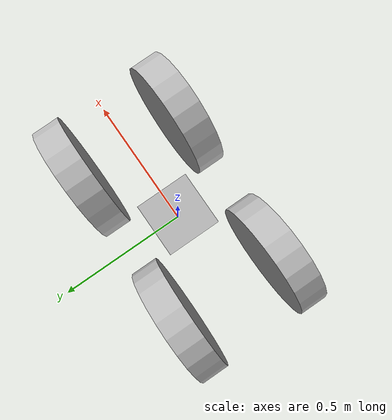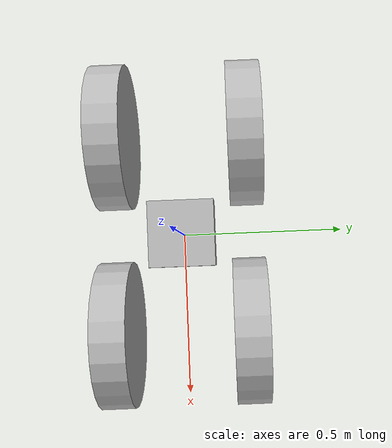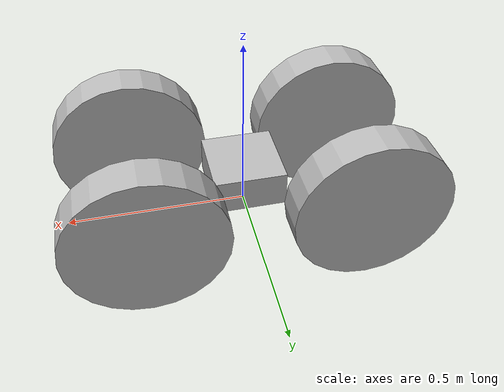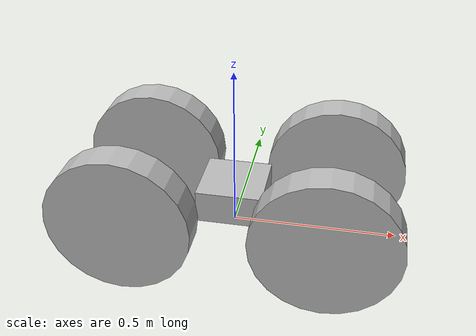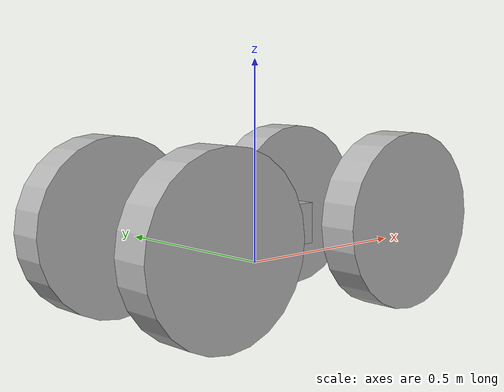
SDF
<sdf version="1.4">
<model name="my_model">
  <pose>0 0 0 0 0 0</pose>
  <static>false</static>
    <link name='chassis'>
            <pose>0 0 .1 0 0 0</pose>
            <collision name='collision'>
              <geometry>
                <box>
                  <size>.02 .02 .1</size>
                </box>
              </geometry>
            </collision>

            <collision name='caster_collision'>
            <pose>-0.15 0 -0.05 0 0 0</pose>
            <geometry>
                <sphere>
                <radius>.05</radius>
              </sphere>
            </geometry>

            <surface>
              <friction>
                <ode>
                  <mu>0</mu>
                  <mu2>0</mu2>
                  <mu3>0</mu3>
                  <mu4>0</mu4>
                  <slip1>1.0</slip1>
                  <slip2>1.0</slip2>
                  <slip3>1.0</slip3>
                  <slip4>1.0</slip4>
                </ode>
              </friction>
            </surface>
          </collision>

            <visual name='visual'>
              <geometry>
                <box>
                  <size>.2 .2 .1</size>
                </box>
              </geometry>
            </visual>

        </link>

      <link name="front_left_wheel">
        <pose>0.3 0.2 0.1 0 1.5707 1.5707</pose>
        <collision name="collision">
          <geometry>
            <cylinder>
              <radius>.22</radius>
              <length>.1</length>
            </cylinder>
          </geometry>
        </collision>
        <visual name="visual">
          <geometry>
            <cylinder>
              <radius>.22</radius>
              <length>.1</length>
            </cylinder>
          </geometry>
        </visual>
      </link>

      <link name="back_left_wheel">
        <pose>-0.3 0.2 0.1 0 1.5707 1.5707</pose>
        <collision name="collision">
          <geometry>
            <cylinder>
              <radius>.22</radius>
              <length>.1</length>
            </cylinder>
          </geometry>
        </collision>
        <visual name="visual">
          <geometry>
            <cylinder>
              <radius>.22</radius>
              <length>.1</length>
            </cylinder>
          </geometry>
        </visual>
      </link>

      <link name="front_right_wheel">
        <pose>0.3 -0.2 0.1 0 1.5707 1.5707</pose>
        <collision name="collision">
          <geometry>
            <cylinder>
              <radius>.22</radius>
              <length>.1</length>
            </cylinder>
          </geometry>
        </collision>
        <visual name="visual">
          <geometry>
            <cylinder>
              <radius>.22</radius>
              <length>.1</length>
            </cylinder>
          </geometry>
        </visual>
      </link>

      <link name="back_right_wheel">
        <pose>-0.3 -0.2 0.1 0 1.5707 1.5707</pose>
        <collision name="collision">
          <geometry>
            <cylinder>
              <radius>.22</radius>
              <length>.1</length>
            </cylinder>
          </geometry>
        </collision>
        <visual name="visual">
          <geometry>
            <cylinder>
              <radius>.22</radius>
              <length>.1</length>
            </cylinder>
          </geometry>
        </visual>
      </link>

      <joint type="revolute" name="left_wheel_hinge_back">
        <pose>0 0 -0.03 0 0 0</pose>
        <child>back_left_wheel</child>
        <parent>chassis</parent>
        <axis>
          <xyz>0 1 0</xyz>
        </axis>
      </joint>

      <joint type="revolute" name="left_wheel_hinge_front">
        <pose>0 0 -0.03 0 0 0</pose>
        <child>front_left_wheel</child>
        <parent>chassis</parent>
        <axis>
          <xyz>0 1 0</xyz>
        </axis>
      </joint>

      <joint type="revolute" name="right_wheel_hinge_back">
        <pose>0 0 0.03 0 0 0</pose>
        <child>back_right_wheel</child>
        <parent>chassis</parent>
        <axis>
          <xyz>0 1 0</xyz>
        </axis>
      </joint>

      <joint type="revolute" name="right_wheel_hinge_front">
        <pose>0 0 0.03 0 0 0</pose>
        <child>front_right_wheel</child>
        <parent>chassis</parent>
        <axis>
          <xyz>0 1 0</xyz>
        </axis>
      </joint>
  </model>
</sdf>
